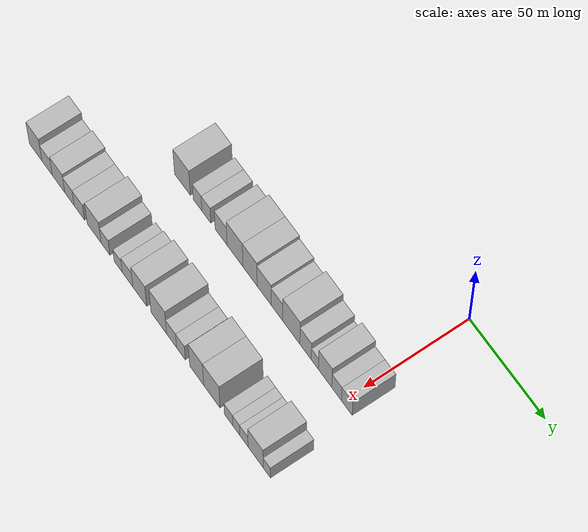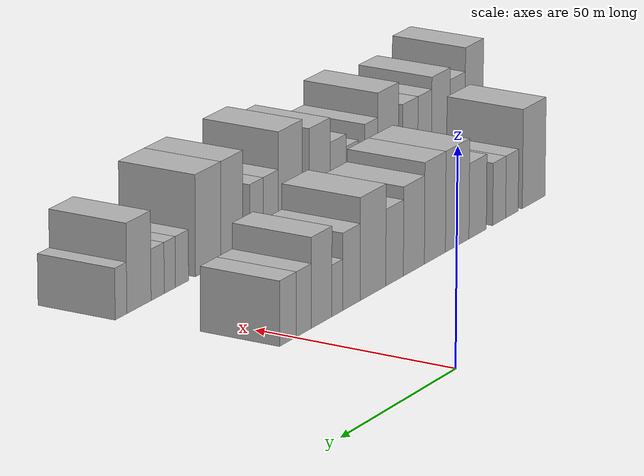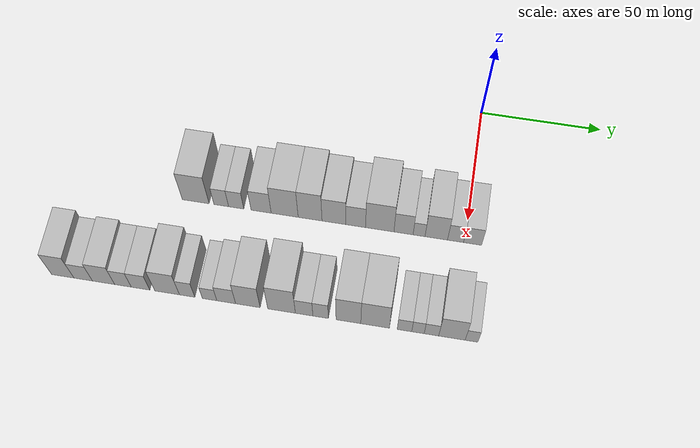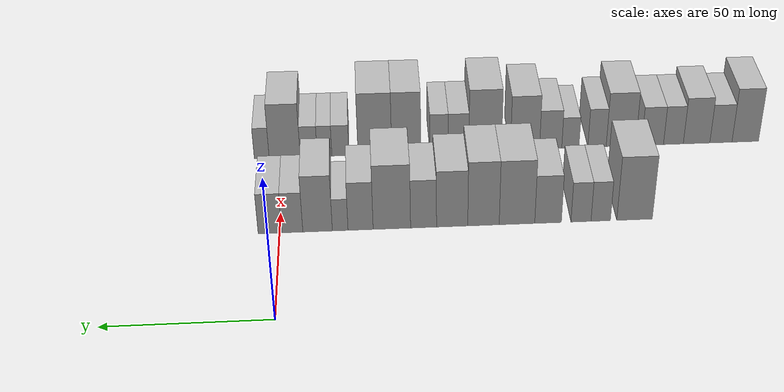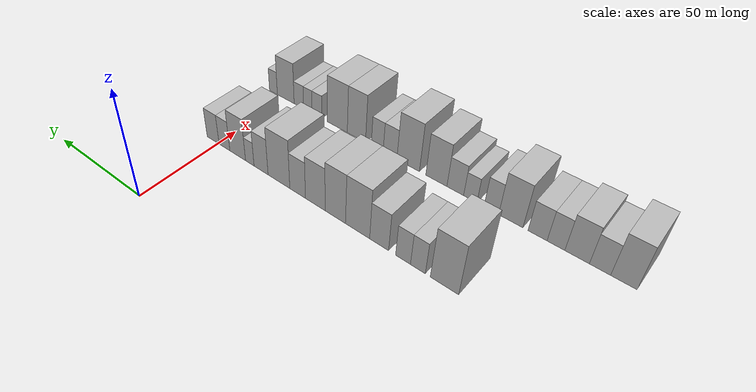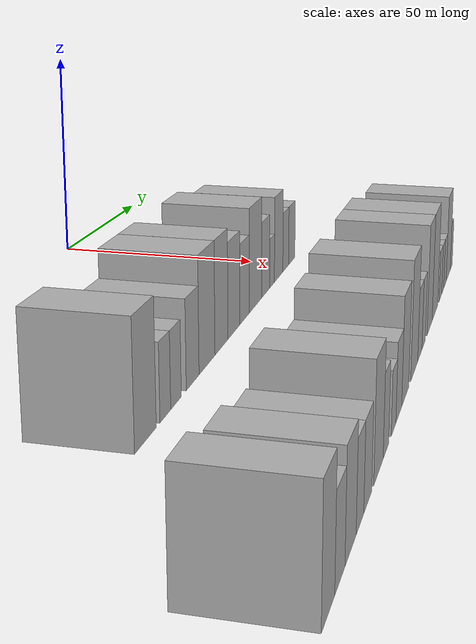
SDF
<sdf version="1.6">
 <world name="default">
  <model name="building_18">
   <static>1</static>
   <pose>50.0000 -109.8939 0 0.000000 0.000000 0.000000</pose>
   <link name="link">
    <pose>0 0 12.00 0 0 0</pose>
    <collision name="collision"><geometry><box><size>20.0000 11.1360 24.0000</size></box></geometry></collision>
    <visual name="visual">
     <cast_shadows>0</cast_shadows>
     <geometry><box><size>20.0000 11.1360 24.0000</size></box></geometry>
     <material>
      <script>
       <uri>model://HANNAS_wall/materials/scripts</uri>
       <uri>model://HANNAS_wall/materials/textures</uri>
       <name>vrc/HANNAS_wall</name>
      </script>
     </material>
    </visual>
   </link>
  </model>
  <model name="building_19">
   <static>1</static>
   <pose>50.0000 -99.2927 0 0.000000 0.000000 0.000000</pose>
   <link name="link">
    <pose>0 0 7.50 0 0 0</pose>
    <collision name="collision"><geometry><box><size>20.0000 6.0665 15.0000</size></box></geometry></collision>
    <visual name="visual">
     <cast_shadows>0</cast_shadows>
     <geometry><box><size>20.0000 6.0665 15.0000</size></box></geometry>
     <material>
      <script>
       <uri>model://HANNAS_wall/materials/scripts</uri>
       <uri>model://HANNAS_wall/materials/textures</uri>
       <name>vrc/HANNAS_wall</name>
      </script>
     </material>
    </visual>
   </link>
  </model>
  <model name="building_20">
   <static>1</static>
   <pose>50.0000 -93.1286 0 0.000000 0.000000 0.000000</pose>
   <link name="link">
    <pose>0 0 7.50 0 0 0</pose>
    <collision name="collision"><geometry><box><size>20.0000 6.2618 15.0000</size></box></geometry></collision>
    <visual name="visual">
     <cast_shadows>0</cast_shadows>
     <geometry><box><size>20.0000 6.2618 15.0000</size></box></geometry>
     <material>
      <script>
       <uri>model://HANNAS_wall/materials/scripts</uri>
       <uri>model://HANNAS_wall/materials/textures</uri>
       <name>vrc/HANNAS_wall</name>
      </script>
     </material>
    </visual>
   </link>
  </model>
  <model name="building_21">
   <static>1</static>
   <pose>50.0000 -82.8432 0 0.000000 0.000000 0.000000</pose>
   <link name="link">
    <pose>0 0 9.00 0 0 0</pose>
    <collision name="collision"><geometry><box><size>20.0000 8.3088 18.0000</size></box></geometry></collision>
    <visual name="visual">
     <cast_shadows>0</cast_shadows>
     <geometry><box><size>20.0000 8.3088 18.0000</size></box></geometry>
     <material>
      <script>
       <uri>model://HANNAS_wall/materials/scripts</uri>
       <uri>model://HANNAS_wall/materials/textures</uri>
       <name>vrc/HANNAS_wall</name>
      </script>
     </material>
    </visual>
   </link>
  </model>
  <model name="building_22">
   <static>1</static>
   <pose>50.0000 -73.1560 0 0.000000 0.000000 0.000000</pose>
   <link name="link">
    <pose>0 0 12.00 0 0 0</pose>
    <collision name="collision"><geometry><box><size>20.0000 11.0657 24.0000</size></box></geometry></collision>
    <visual name="visual">
     <cast_shadows>0</cast_shadows>
     <geometry><box><size>20.0000 11.0657 24.0000</size></box></geometry>
     <material>
      <script>
       <uri>model://HANNAS_wall/materials/scripts</uri>
       <uri>model://HANNAS_wall/materials/textures</uri>
       <name>vrc/HANNAS_wall</name>
      </script>
     </material>
    </visual>
   </link>
  </model>
  <model name="building_23">
   <static>1</static>
   <pose>50.0000 -62.7420 0 0.000000 0.000000 0.000000</pose>
   <link name="link">
    <pose>0 0 12.00 0 0 0</pose>
    <collision name="collision"><geometry><box><size>20.0000 9.7621 24.0000</size></box></geometry></collision>
    <visual name="visual">
     <cast_shadows>0</cast_shadows>
     <geometry><box><size>20.0000 9.7621 24.0000</size></box></geometry>
     <material>
      <script>
       <uri>model://HANNAS_wall/materials/scripts</uri>
       <uri>model://HANNAS_wall/materials/textures</uri>
       <name>vrc/HANNAS_wall</name>
      </script>
     </material>
    </visual>
   </link>
  </model>
  <model name="building_24">
   <static>1</static>
   <pose>50.0000 -53.0204 0 0.000000 0.000000 0.000000</pose>
   <link name="link">
    <pose>0 0 10.50 0 0 0</pose>
    <collision name="collision"><geometry><box><size>20.0000 9.6811 21.0000</size></box></geometry></collision>
    <visual name="visual">
     <cast_shadows>0</cast_shadows>
     <geometry><box><size>20.0000 9.6811 21.0000</size></box></geometry>
     <material>
      <script>
       <uri>model://HANNAS_wall/materials/scripts</uri>
       <uri>model://HANNAS_wall/materials/textures</uri>
       <name>vrc/HANNAS_wall</name>
      </script>
     </material>
    </visual>
   </link>
  </model>
  <model name="building_25">
   <static>1</static>
   <pose>50.0000 -44.1739 0 0.000000 0.000000 0.000000</pose>
   <link name="link">
    <pose>0 0 9.00 0 0 0</pose>
    <collision name="collision"><geometry><box><size>20.0000 8.0121 18.0000</size></box></geometry></collision>
    <visual name="visual">
     <cast_shadows>0</cast_shadows>
     <geometry><box><size>20.0000 8.0121 18.0000</size></box></geometry>
     <material>
      <script>
       <uri>model://HANNAS_wall/materials/scripts</uri>
       <uri>model://HANNAS_wall/materials/textures</uri>
       <name>vrc/HANNAS_wall</name>
      </script>
     </material>
    </visual>
   </link>
  </model>
  <model name="building_26">
   <static>1</static>
   <pose>50.0000 -34.3919 0 0.000000 0.000000 0.000000</pose>
   <link name="link">
    <pose>0 0 12.00 0 0 0</pose>
    <collision name="collision"><geometry><box><size>20.0000 11.5519 24.0000</size></box></geometry></collision>
    <visual name="visual">
     <cast_shadows>0</cast_shadows>
     <geometry><box><size>20.0000 11.5519 24.0000</size></box></geometry>
     <material>
      <script>
       <uri>model://HANNAS_wall/materials/scripts</uri>
       <uri>model://HANNAS_wall/materials/textures</uri>
       <name>vrc/HANNAS_wall</name>
      </script>
     </material>
    </visual>
   </link>
  </model>
  <model name="building_27">
   <static>1</static>
   <pose>50.0000 -24.7512 0 0.000000 0.000000 0.000000</pose>
   <link name="link">
    <pose>0 0 9.00 0 0 0</pose>
    <collision name="collision"><geometry><box><size>20.0000 7.7294 18.0000</size></box></geometry></collision>
    <visual name="visual">
     <cast_shadows>0</cast_shadows>
     <geometry><box><size>20.0000 7.7294 18.0000</size></box></geometry>
     <material>
      <script>
       <uri>model://HANNAS_wall/materials/scripts</uri>
       <uri>model://HANNAS_wall/materials/textures</uri>
       <name>vrc/HANNAS_wall</name>
      </script>
     </material>
    </visual>
   </link>
  </model>
  <model name="building_28">
   <static>1</static>
   <pose>50.0000 -18.4788 0 0.000000 0.000000 0.000000</pose>
   <link name="link">
    <pose>0 0 6.00 0 0 0</pose>
    <collision name="collision"><geometry><box><size>20.0000 4.8155 12.0000</size></box></geometry></collision>
    <visual name="visual">
     <cast_shadows>0</cast_shadows>
     <geometry><box><size>20.0000 4.8155 12.0000</size></box></geometry>
     <material>
      <script>
       <uri>model://HANNAS_wall/materials/scripts</uri>
       <uri>model://HANNAS_wall/materials/textures</uri>
       <name>vrc/HANNAS_wall</name>
      </script>
     </material>
    </visual>
   </link>
  </model>
  <model name="building_29">
   <static>1</static>
   <pose>50.0000 -11.5415 0 0.000000 0.000000 0.000000</pose>
   <link name="link">
    <pose>0 0 10.50 0 0 0</pose>
    <collision name="collision"><geometry><box><size>20.0000 9.0590 21.0000</size></box></geometry></collision>
    <visual name="visual">
     <cast_shadows>0</cast_shadows>
     <geometry><box><size>20.0000 9.0590 21.0000</size></box></geometry>
     <material>
      <script>
       <uri>model://HANNAS_wall/materials/scripts</uri>
       <uri>model://HANNAS_wall/materials/textures</uri>
       <name>vrc/HANNAS_wall</name>
      </script>
     </material>
    </visual>
   </link>
  </model>
  <model name="building_30">
   <static>1</static>
   <pose>50.0000 -3.7918 0 0.000000 0.000000 0.000000</pose>
   <link name="link">
    <pose>0 0 7.50 0 0 0</pose>
    <collision name="collision"><geometry><box><size>20.0000 6.4405 15.0000</size></box></geometry></collision>
    <visual name="visual">
     <cast_shadows>0</cast_shadows>
     <geometry><box><size>20.0000 6.4405 15.0000</size></box></geometry>
     <material>
      <script>
       <uri>model://HANNAS_wall/materials/scripts</uri>
       <uri>model://HANNAS_wall/materials/textures</uri>
       <name>vrc/HANNAS_wall</name>
      </script>
     </material>
    </visual>
   </link>
  </model>
  <model name="building_31">
   <static>1</static>
   <pose>50.0000 3.0482 0 0.000000 0.000000 0.000000</pose>
   <link name="link">
    <pose>0 0 7.50 0 0 0</pose>
    <collision name="collision"><geometry><box><size>20.0000 7.2395 15.0000</size></box></geometry></collision>
    <visual name="visual">
     <cast_shadows>0</cast_shadows>
     <geometry><box><size>20.0000 7.2395 15.0000</size></box></geometry>
     <material>
      <script>
       <uri>model://HANNAS_wall/materials/scripts</uri>
       <uri>model://HANNAS_wall/materials/textures</uri>
       <name>vrc/HANNAS_wall</name>
      </script>
     </material>
    </visual>
   </link>
  </model>
  <model name="building_82">
   <static>1</static>
   <pose>90.0000 -154.2460 0 0.000000 0.000000 0.000000</pose>
   <link name="link">
    <pose>0 0 10.50 0 0 0</pose>
    <collision name="collision"><geometry><box><size>20.0000 9.0242 21.0000</size></box></geometry></collision>
    <visual name="visual">
     <cast_shadows>0</cast_shadows>
     <geometry><box><size>20.0000 9.0242 21.0000</size></box></geometry>
     <material>
      <script>
       <uri>model://HANNAS_wall/materials/scripts</uri>
       <uri>model://HANNAS_wall/materials/textures</uri>
       <name>vrc/HANNAS_wall</name>
      </script>
     </material>
    </visual>
   </link>
  </model>
  <model name="building_83">
   <static>1</static>
   <pose>90.0000 -145.9849 0 0.000000 0.000000 0.000000</pose>
   <link name="link">
    <pose>0 0 7.50 0 0 0</pose>
    <collision name="collision"><geometry><box><size>20.0000 7.4980 15.0000</size></box></geometry></collision>
    <visual name="visual">
     <cast_shadows>0</cast_shadows>
     <geometry><box><size>20.0000 7.4980 15.0000</size></box></geometry>
     <material>
      <script>
       <uri>model://HANNAS_wall/materials/scripts</uri>
       <uri>model://HANNAS_wall/materials/textures</uri>
       <name>vrc/HANNAS_wall</name>
      </script>
     </material>
    </visual>
   </link>
  </model>
  <model name="building_84">
   <static>1</static>
   <pose>90.0000 -137.7460 0 0.000000 0.000000 0.000000</pose>
   <link name="link">
    <pose>0 0 9.00 0 0 0</pose>
    <collision name="collision"><geometry><box><size>20.0000 8.9799 18.0000</size></box></geometry></collision>
    <visual name="visual">
     <cast_shadows>0</cast_shadows>
     <geometry><box><size>20.0000 8.9799 18.0000</size></box></geometry>
     <material>
      <script>
       <uri>model://HANNAS_wall/materials/scripts</uri>
       <uri>model://HANNAS_wall/materials/textures</uri>
       <name>vrc/HANNAS_wall</name>
      </script>
     </material>
    </visual>
   </link>
  </model>
  <model name="building_85">
   <static>1</static>
   <pose>90.0000 -129.9072 0 0.000000 0.000000 0.000000</pose>
   <link name="link">
    <pose>0 0 7.50 0 0 0</pose>
    <collision name="collision"><geometry><box><size>20.0000 6.6978 15.0000</size></box></geometry></collision>
    <visual name="visual">
     <cast_shadows>0</cast_shadows>
     <geometry><box><size>20.0000 6.6978 15.0000</size></box></geometry>
     <material>
      <script>
       <uri>model://HANNAS_wall/materials/scripts</uri>
       <uri>model://HANNAS_wall/materials/textures</uri>
       <name>vrc/HANNAS_wall</name>
      </script>
     </material>
    </visual>
   </link>
  </model>
  <model name="building_86">
   <static>1</static>
   <pose>90.0000 -122.8420 0 0.000000 0.000000 0.000000</pose>
   <link name="link">
    <pose>0 0 7.50 0 0 0</pose>
    <collision name="collision"><geometry><box><size>20.0000 7.4326 15.0000</size></box></geometry></collision>
    <visual name="visual">
     <cast_shadows>0</cast_shadows>
     <geometry><box><size>20.0000 7.4326 15.0000</size></box></geometry>
     <material>
      <script>
       <uri>model://HANNAS_wall/materials/scripts</uri>
       <uri>model://HANNAS_wall/materials/textures</uri>
       <name>vrc/HANNAS_wall</name>
      </script>
     </material>
    </visual>
   </link>
  </model>
  <model name="building_87">
   <static>1</static>
   <pose>90.0000 -112.1810 0 0.000000 0.000000 0.000000</pose>
   <link name="link">
    <pose>0 0 10.50 0 0 0</pose>
    <collision name="collision"><geometry><box><size>20.0000 9.8894 21.0000</size></box></geometry></collision>
    <visual name="visual">
     <cast_shadows>0</cast_shadows>
     <geometry><box><size>20.0000 9.8894 21.0000</size></box></geometry>
     <material>
      <script>
       <uri>model://HANNAS_wall/materials/scripts</uri>
       <uri>model://HANNAS_wall/materials/textures</uri>
       <name>vrc/HANNAS_wall</name>
      </script>
     </material>
    </visual>
   </link>
  </model>
  <model name="building_88">
   <static>1</static>
   <pose>90.0000 -104.1610 0 0.000000 0.000000 0.000000</pose>
   <link name="link">
    <pose>0 0 7.50 0 0 0</pose>
    <collision name="collision"><geometry><box><size>20.0000 6.1506 15.0000</size></box></geometry></collision>
    <visual name="visual">
     <cast_shadows>0</cast_shadows>
     <geometry><box><size>20.0000 6.1506 15.0000</size></box></geometry>
     <material>
      <script>
       <uri>model://HANNAS_wall/materials/scripts</uri>
       <uri>model://HANNAS_wall/materials/textures</uri>
       <name>vrc/HANNAS_wall</name>
      </script>
     </material>
    </visual>
   </link>
  </model>
  <model name="building_89">
   <static>1</static>
   <pose>90.0000 -95.2055 0 0.000000 0.000000 0.000000</pose>
   <link name="link">
    <pose>0 0 6.00 0 0 0</pose>
    <collision name="collision"><geometry><box><size>20.0000 5.7605 12.0000</size></box></geometry></collision>
    <visual name="visual">
     <cast_shadows>0</cast_shadows>
     <geometry><box><size>20.0000 5.7605 12.0000</size></box></geometry>
     <material>
      <script>
       <uri>model://HANNAS_wall/materials/scripts</uri>
       <uri>model://HANNAS_wall/materials/textures</uri>
       <name>vrc/HANNAS_wall</name>
      </script>
     </material>
    </visual>
   </link>
  </model>
  <model name="building_90">
   <static>1</static>
   <pose>90.0000 -88.5963 0 0.000000 0.000000 0.000000</pose>
   <link name="link">
    <pose>0 0 7.50 0 0 0</pose>
    <collision name="collision"><geometry><box><size>20.0000 7.4580 15.0000</size></box></geometry></collision>
    <visual name="visual">
     <cast_shadows>0</cast_shadows>
     <geometry><box><size>20.0000 7.4580 15.0000</size></box></geometry>
     <material>
      <script>
       <uri>model://HANNAS_wall/materials/scripts</uri>
       <uri>model://HANNAS_wall/materials/textures</uri>
       <name>vrc/HANNAS_wall</name>
      </script>
     </material>
    </visual>
   </link>
  </model>
  <model name="building_91">
   <static>1</static>
   <pose>90.0000 -80.0150 0 0.000000 0.000000 0.000000</pose>
   <link name="link">
    <pose>0 0 10.50 0 0 0</pose>
    <collision name="collision"><geometry><box><size>20.0000 9.7045 21.0000</size></box></geometry></collision>
    <visual name="visual">
     <cast_shadows>0</cast_shadows>
     <geometry><box><size>20.0000 9.7045 21.0000</size></box></geometry>
     <material>
      <script>
       <uri>model://HANNAS_wall/materials/scripts</uri>
       <uri>model://HANNAS_wall/materials/textures</uri>
       <name>vrc/HANNAS_wall</name>
      </script>
     </material>
    </visual>
   </link>
  </model>
  <model name="building_92">
   <static>1</static>
   <pose>90.0000 -66.7115 0 0.000000 0.000000 0.000000</pose>
   <link name="link">
    <pose>0 0 12.00 0 0 0</pose>
    <collision name="collision"><geometry><box><size>20.0000 10.9025 24.0000</size></box></geometry></collision>
    <visual name="visual">
     <cast_shadows>0</cast_shadows>
     <geometry><box><size>20.0000 10.9025 24.0000</size></box></geometry>
     <material>
      <script>
       <uri>model://HANNAS_wall/materials/scripts</uri>
       <uri>model://HANNAS_wall/materials/textures</uri>
       <name>vrc/HANNAS_wall</name>
      </script>
     </material>
    </visual>
   </link>
  </model>
  <model name="building_93">
   <static>1</static>
   <pose>90.0000 -57.8271 0 0.000000 0.000000 0.000000</pose>
   <link name="link">
    <pose>0 0 7.50 0 0 0</pose>
    <collision name="collision"><geometry><box><size>20.0000 6.8663 15.0000</size></box></geometry></collision>
    <visual name="visual">
     <cast_shadows>0</cast_shadows>
     <geometry><box><size>20.0000 6.8663 15.0000</size></box></geometry>
     <material>
      <script>
       <uri>model://HANNAS_wall/materials/scripts</uri>
       <uri>model://HANNAS_wall/materials/textures</uri>
       <name>vrc/HANNAS_wall</name>
      </script>
     </material>
    </visual>
   </link>
  </model>
  <model name="building_94">
   <static>1</static>
   <pose>90.0000 -51.3597 0 0.000000 0.000000 0.000000</pose>
   <link name="link">
    <pose>0 0 7.50 0 0 0</pose>
    <collision name="collision"><geometry><box><size>20.0000 6.0684 15.0000</size></box></geometry></collision>
    <visual name="visual">
     <cast_shadows>0</cast_shadows>
     <geometry><box><size>20.0000 6.0684 15.0000</size></box></geometry>
     <material>
      <script>
       <uri>model://HANNAS_wall/materials/scripts</uri>
       <uri>model://HANNAS_wall/materials/textures</uri>
       <name>vrc/HANNAS_wall</name>
      </script>
     </material>
    </visual>
   </link>
  </model>
  <model name="building_95">
   <static>1</static>
   <pose>90.0000 -40.4830 0 0.000000 0.000000 0.000000</pose>
   <link name="link">
    <pose>0 0 12.00 0 0 0</pose>
    <collision name="collision"><geometry><box><size>20.0000 9.6850 24.0000</size></box></geometry></collision>
    <visual name="visual">
     <cast_shadows>0</cast_shadows>
     <geometry><box><size>20.0000 9.6850 24.0000</size></box></geometry>
     <material>
      <script>
       <uri>model://HANNAS_wall/materials/scripts</uri>
       <uri>model://HANNAS_wall/materials/textures</uri>
       <name>vrc/HANNAS_wall</name>
      </script>
     </material>
    </visual>
   </link>
  </model>
  <model name="building_96">
   <static>1</static>
   <pose>90.0000 -30.0704 0 0.000000 0.000000 0.000000</pose>
   <link name="link">
    <pose>0 0 12.00 0 0 0</pose>
    <collision name="collision"><geometry><box><size>20.0000 11.1402 24.0000</size></box></geometry></collision>
    <visual name="visual">
     <cast_shadows>0</cast_shadows>
     <geometry><box><size>20.0000 11.1402 24.0000</size></box></geometry>
     <material>
      <script>
       <uri>model://HANNAS_wall/materials/scripts</uri>
       <uri>model://HANNAS_wall/materials/textures</uri>
       <name>vrc/HANNAS_wall</name>
      </script>
     </material>
    </visual>
   </link>
  </model>
  <model name="building_97">
   <static>1</static>
   <pose>90.0000 -18.6779 0 0.000000 0.000000 0.000000</pose>
   <link name="link">
    <pose>0 0 6.00 0 0 0</pose>
    <collision name="collision"><geometry><box><size>20.0000 5.6447 12.0000</size></box></geometry></collision>
    <visual name="visual">
     <cast_shadows>0</cast_shadows>
     <geometry><box><size>20.0000 5.6447 12.0000</size></box></geometry>
     <material>
      <script>
       <uri>model://HANNAS_wall/materials/scripts</uri>
       <uri>model://HANNAS_wall/materials/textures</uri>
       <name>vrc/HANNAS_wall</name>
      </script>
     </material>
    </visual>
   </link>
  </model>
  <model name="building_98">
   <static>1</static>
   <pose>90.0000 -13.4449 0 0.000000 0.000000 0.000000</pose>
   <link name="link">
    <pose>0 0 6.00 0 0 0</pose>
    <collision name="collision"><geometry><box><size>20.0000 4.8214 12.0000</size></box></geometry></collision>
    <visual name="visual">
     <cast_shadows>0</cast_shadows>
     <geometry><box><size>20.0000 4.8214 12.0000</size></box></geometry>
     <material>
      <script>
       <uri>model://HANNAS_wall/materials/scripts</uri>
       <uri>model://HANNAS_wall/materials/textures</uri>
       <name>vrc/HANNAS_wall</name>
      </script>
     </material>
    </visual>
   </link>
  </model>
  <model name="building_99">
   <static>1</static>
   <pose>90.0000 -8.2300 0 0.000000 0.000000 0.000000</pose>
   <link name="link">
    <pose>0 0 6.00 0 0 0</pose>
    <collision name="collision"><geometry><box><size>20.0000 5.6083 12.0000</size></box></geometry></collision>
    <visual name="visual">
     <cast_shadows>0</cast_shadows>
     <geometry><box><size>20.0000 5.6083 12.0000</size></box></geometry>
     <material>
      <script>
       <uri>model://HANNAS_wall/materials/scripts</uri>
       <uri>model://HANNAS_wall/materials/textures</uri>
       <name>vrc/HANNAS_wall</name>
      </script>
     </material>
    </visual>
   </link>
  </model>
  <model name="building_100">
   <static>1</static>
   <pose>90.0000 -0.3167 0 0.000000 0.000000 0.000000</pose>
   <link name="link">
    <pose>0 0 10.50 0 0 0</pose>
    <collision name="collision"><geometry><box><size>20.0000 10.2184 21.0000</size></box></geometry></collision>
    <visual name="visual">
     <cast_shadows>0</cast_shadows>
     <geometry><box><size>20.0000 10.2184 21.0000</size></box></geometry>
     <material>
      <script>
       <uri>model://HANNAS_wall/materials/scripts</uri>
       <uri>model://HANNAS_wall/materials/textures</uri>
       <name>vrc/HANNAS_wall</name>
      </script>
     </material>
    </visual>
   </link>
  </model>
  <model name="building_101">
   <static>1</static>
   <pose>90.0000 7.2332 0 0.000000 0.000000 0.000000</pose>
   <link name="link">
    <pose>0 0 6.00 0 0 0</pose>
    <collision name="collision"><geometry><box><size>20.0000 4.8814 12.0000</size></box></geometry></collision>
    <visual name="visual">
     <cast_shadows>0</cast_shadows>
     <geometry><box><size>20.0000 4.8814 12.0000</size></box></geometry>
     <material>
      <script>
       <uri>model://HANNAS_wall/materials/scripts</uri>
       <uri>model://HANNAS_wall/materials/textures</uri>
       <name>vrc/HANNAS_wall</name>
      </script>
     </material>
    </visual>
   </link>
  </model>
 </world>
</sdf>
